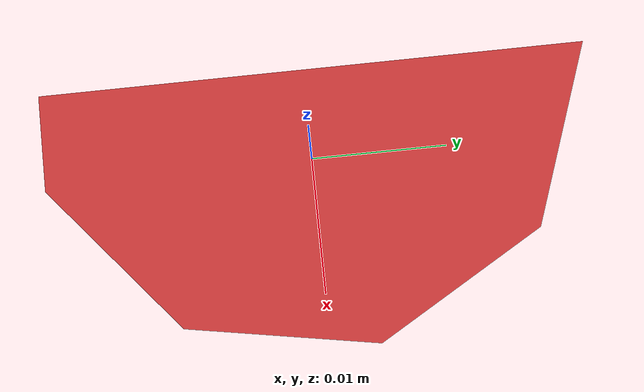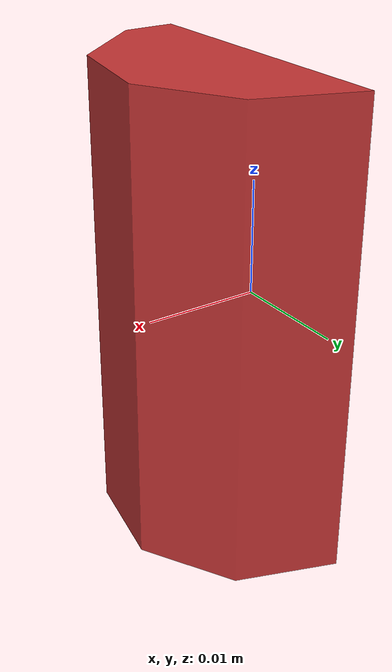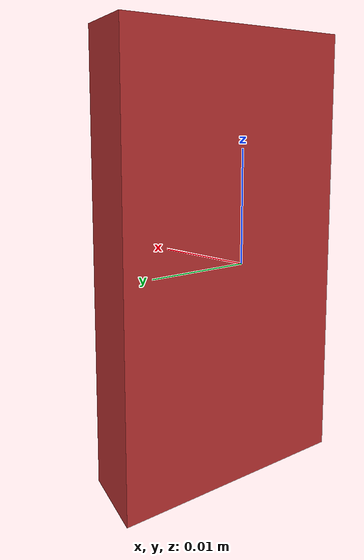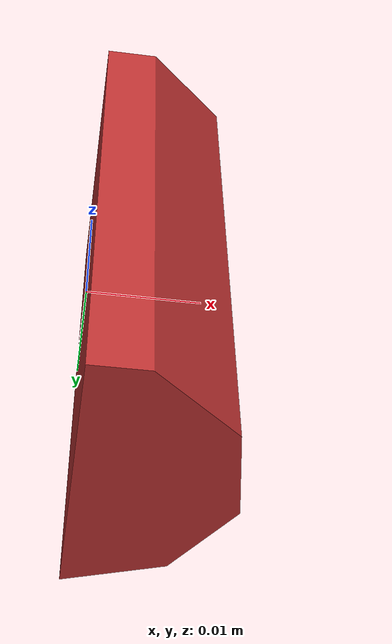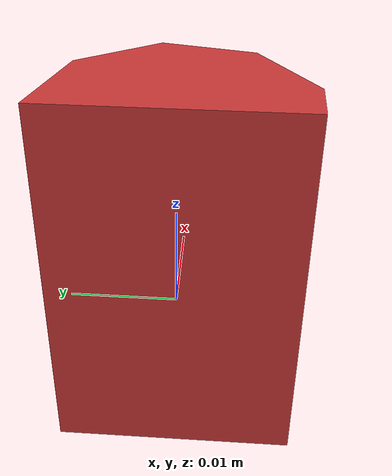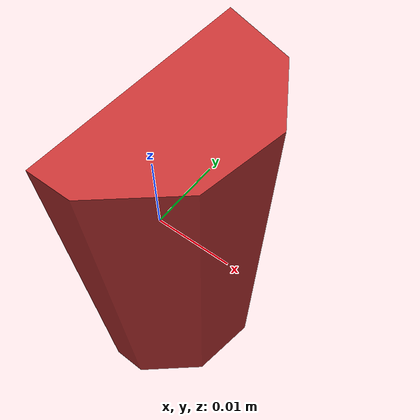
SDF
<?xml version="1.0" ?>
<sdf version='1.6'>
  <model name='cyl_5'>
    <link name='cyl_5'>
      <pose frame=''>0 0 0 0 0 0</pose>
      <inertial>
        <pose frame=''>0.005256 0.000000 0.000000 0. 0. 0.</pose>
        <mass>9.74521322168e-06</mass>
        <inertia>
          <ixx>1.70515002504e-09</ixx>
          <ixy>-6.38595256962e-13</ixy>
          <ixz>5.51453741702e-26</ixz>
          <iyy>1.43596050043e-09</iyy>
          <iyz>-2.75726870851e-26</iyz>
          <izz>4.78433523634e-10</izz>
        </inertia>
      </inertial>
      <visual>
        <pose frame=''>0 0 0 0 0 0</pose>
        <geometry>
          <mesh>
            <scale>1 1 1</scale>
            <uri>models/half_carrot_models/meshes/cyl_5.obj</uri>
          </mesh>
        </geometry>
        <material>
          <ambient>0.75 0.2 0.2 1.0</ambient>
          <diffuse>0.75 0.2 0.2 1.0</diffuse>
          <specular>0.01 0.01 0.01 1</specular>
          <emissive>0 0 0 1</emissive>
          <shader type='vertex'>
            <normal_map>__default__</normal_map>
          </shader>
        </material>
      </visual>
      <collision>
        <pose frame=''>0 0 0 0 0 0</pose>
        <geometry>
          <mesh>
            <scale>1 1 1</scale>
            <uri>models/half_carrot_models/meshes/cyl_5.obj</uri>
          </mesh>
        </geometry>
      </collision>
      <gravity>1</gravity>
      <self_collide>0</self_collide>
    </link>
  </model>
</sdf>
